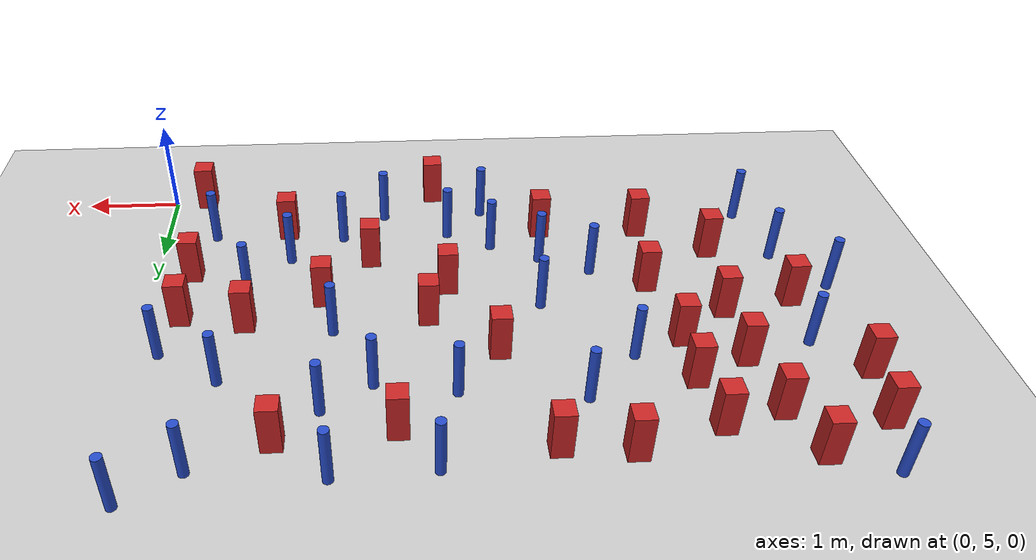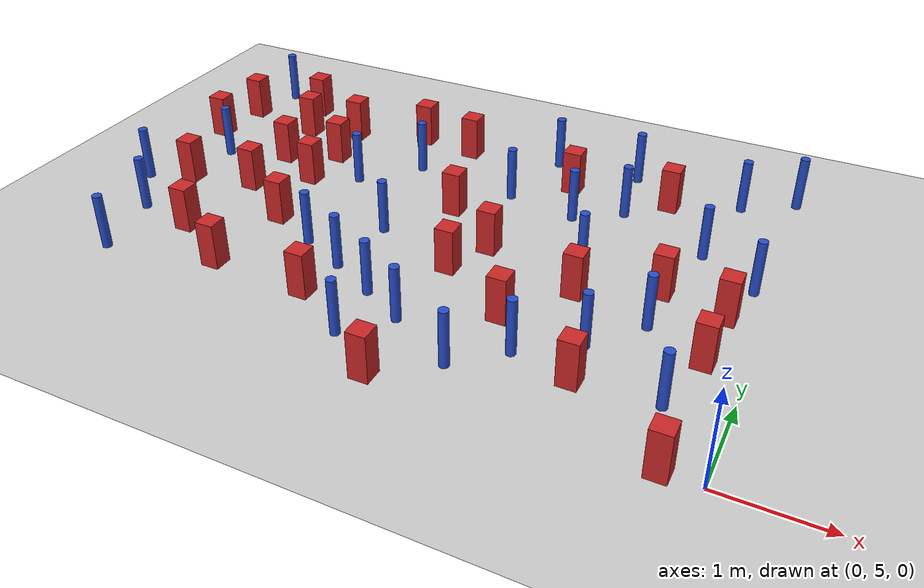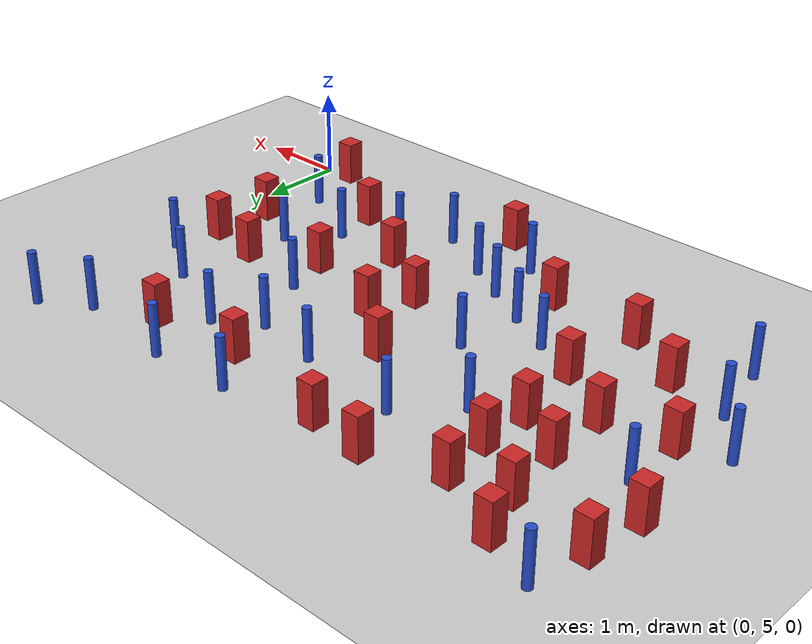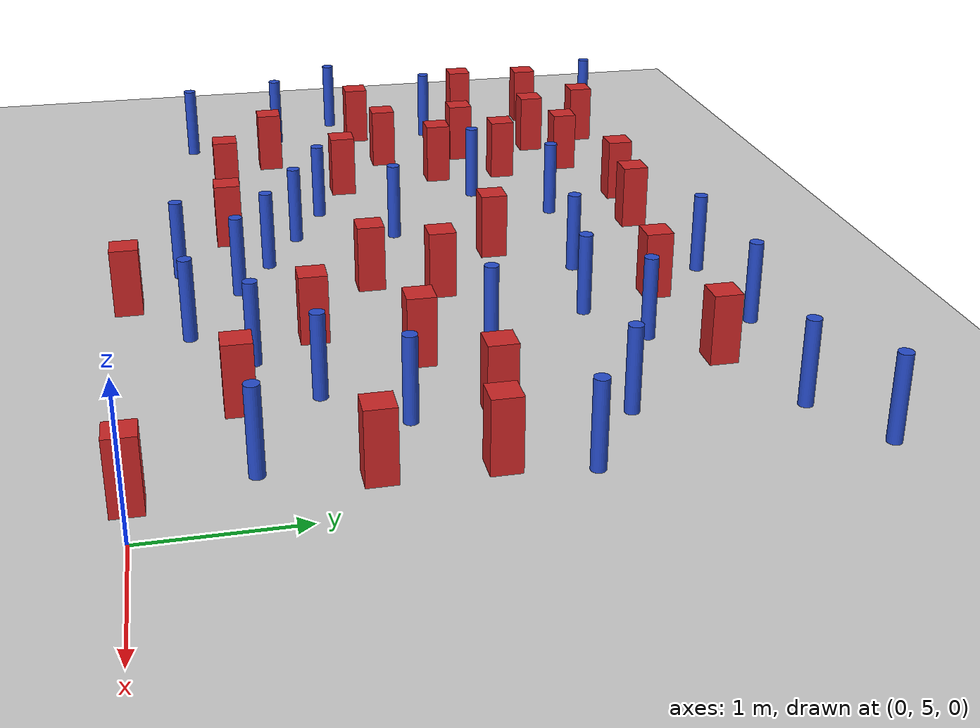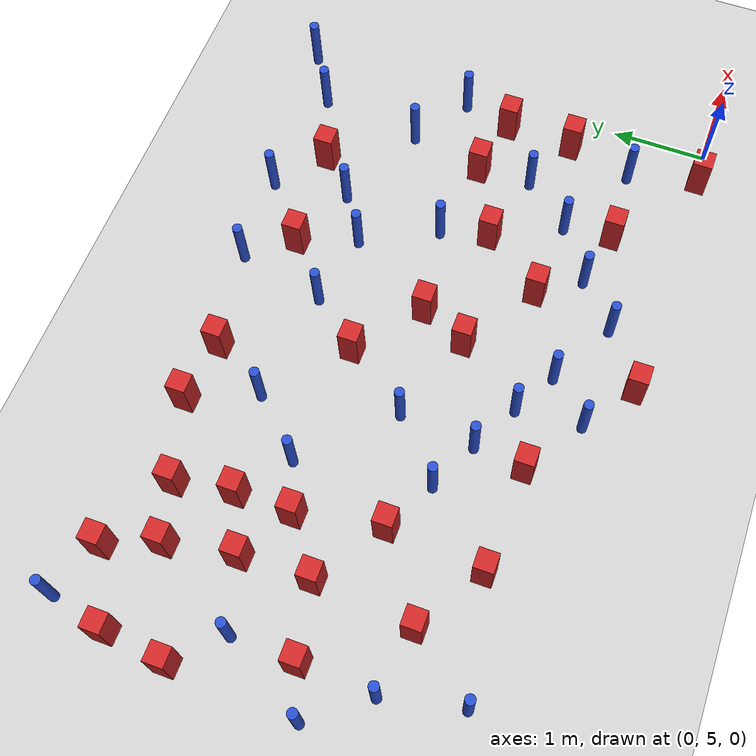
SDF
<sdf version="1.6">
 <world name="default">
  <model name="ground_plane">
   <static>1</static>
   <link name="link">
    <collision name="collision">
     <geometry><plane><normal>0 0 1</normal><size>100 100</size></plane></geometry>
     <surface><friction><ode><mu>100</mu><mu2>50</mu2></ode></friction></surface>
    </collision>
    <visual name="visual">
     <cast_shadows>0</cast_shadows>
     <geometry><plane><normal>0 0 1</normal><size>100 100</size></plane></geometry>
     <material>
      <ambient>1.0 1.0 1.0 1.0</ambient>
      <diffuse>0.8 0.8 0.8 1.0</diffuse>
      <specular>0.01 0.01 0.01 1.000000</specular>
     </material>
    </visual>
   </link>
  </model>
  <model name="pole_obstacle13">
   <static>true</static>
   <pose>-3.09752706126 5.78183192374 2.88873142074e-08 -9.90536689859e-09 4.60219948989e-07 -1.20965994961e-07</pose>
   <link name="link">
    <pose>0 0 0.3 0 -0 0</pose>
    <inertial>
     <mass>1</mass>
     <inertia><ixx>0.145833</ixx><ixy>0</ixy><ixz>0</ixz><iyy>0.145833</iyy><iyz>0</iyz><izz>0.125</izz></inertia>
    </inertial>
    <collision name="collision">
     <geometry><cylinder><radius>0.05</radius><length>.6</length></cylinder></geometry>
    </collision>
    <visual name="visual">
     <geometry><cylinder><radius>0.05</radius><length>.6</length></cylinder></geometry>
     <material>
      <script><name>Gazebo/Blue</name><uri>file://media/materials/scripts/gazebo.material</uri></script>
     </material>
    </visual>
   </link>
  </model>
  <model name="square_post_obstacle10">
   <static>true</static>
   <pose>-5.09372376777 6.79573837946 8.22691968438e-08 7.2212513382e-06 -7.54495500217e-07 2.29674213826e-05</pose>
   <link name="link">
    <pose>0 0 0.25 0 -0 0</pose>
    <inertial>
     <mass>100</mass>
     <inertia>
      <ixx>0.166667</ixx>
      <ixy>0</ixy>
      <ixz>0</ixz>
      <iyy>0.166667</iyy>
      <iyz>0</iyz>
      <izz>0.166667</izz>
     </inertia>
    </inertial>
    <collision name="collision"><geometry><box><size>.2 .2 .5</size></box></geometry></collision>
    <visual name="visual">
     <geometry><box><size>.2 .2 .5</size></box></geometry>
     <material>
      <script><name>Gazebo/Red</name><uri>file://media/materials/scripts/gazebo.material</uri></script>
     </material>
    </visual>
   </link>
  </model>
  <model name="square_post_obstacle12">
   <static>true</static>
   <pose>-0.361523648074 7.12259870741 8.22691968438e-08 7.22125133819e-06 -7.54495500217e-07 2.29674213826e-05</pose>
   <link name="link">
    <pose>0 0 0.25 0 -0 0</pose>
    <inertial>
     <mass>100</mass>
     <inertia>
      <ixx>0.166667</ixx>
      <ixy>0</ixy>
      <ixz>0</ixz>
      <iyy>0.166667</iyy>
      <iyz>0</iyz>
      <izz>0.166667</izz>
     </inertia>
    </inertial>
    <collision name="collision"><geometry><box><size>.2 .2 .5</size></box></geometry></collision>
    <visual name="visual">
     <geometry><box><size>.2 .2 .5</size></box></geometry>
     <material>
      <script><name>Gazebo/Red</name><uri>file://media/materials/scripts/gazebo.material</uri></script>
     </material>
    </visual>
   </link>
  </model>
  <model name="pole_obstacle25">
   <static>true</static>
   <pose>-1.39941806681 6.18166165972 2.88873142074e-08 -9.90536689852e-09 4.60219948989e-07 -1.2096599496e-07</pose>
   <link name="link">
    <pose>0 0 0.3 0 -0 0</pose>
    <inertial>
     <mass>1</mass>
     <inertia><ixx>0.145833</ixx><ixy>0</ixy><ixz>0</ixz><iyy>0.145833</iyy><iyz>0</iyz><izz>0.125</izz></inertia>
    </inertial>
    <collision name="collision">
     <geometry><cylinder><radius>0.05</radius><length>.6</length></cylinder></geometry>
    </collision>
    <visual name="visual">
     <geometry><cylinder><radius>0.05</radius><length>.6</length></cylinder></geometry>
     <material>
      <script><name>Gazebo/Blue</name><uri>file://media/materials/scripts/gazebo.material</uri></script>
     </material>
    </visual>
   </link>
  </model>
  <model name="pole_obstacle32">
   <static>true</static>
   <pose>-0.978145460235 6.68846403294 2.88873142074e-08 -9.90536689644e-09 4.60219948994e-07 -1.20965994957e-07</pose>
   <link name="link">
    <pose>0 0 0.3 0 -0 0</pose>
    <inertial>
     <mass>1</mass>
     <inertia><ixx>0.145833</ixx><ixy>0</ixy><ixz>0</ixz><iyy>0.145833</iyy><iyz>0</iyz><izz>0.125</izz></inertia>
    </inertial>
    <collision name="collision">
     <geometry><cylinder><radius>0.05</radius><length>.6</length></cylinder></geometry>
    </collision>
    <visual name="visual">
     <geometry><cylinder><radius>0.05</radius><length>.6</length></cylinder></geometry>
     <material>
      <script><name>Gazebo/Blue</name><uri>file://media/materials/scripts/gazebo.material</uri></script>
     </material>
    </visual>
   </link>
  </model>
  <model name="square_post_obstacle28">
   <static>true</static>
   <pose>-5.88088668942 6.23241408819 8.22691968438e-08 7.2212513382e-06 -7.54495500217e-07 2.29674213826e-05</pose>
   <link name="link">
    <pose>0 0 0.25 0 -0 0</pose>
    <inertial>
     <mass>100</mass>
     <inertia>
      <ixx>0.166667</ixx>
      <ixy>0</ixy>
      <ixz>0</ixz>
      <iyy>0.166667</iyy>
      <iyz>0</iyz>
      <izz>0.166667</izz>
     </inertia>
    </inertial>
    <collision name="collision"><geometry><box><size>.2 .2 .5</size></box></geometry></collision>
    <visual name="visual">
     <geometry><box><size>.2 .2 .5</size></box></geometry>
     <material>
      <script><name>Gazebo/Red</name><uri>file://media/materials/scripts/gazebo.material</uri></script>
     </material>
    </visual>
   </link>
  </model>
  <model name="pole_obstacle34">
   <static>true</static>
   <pose>-6.38263424655 5.55719528867 2.88873142074e-08 -9.90536690842e-09 4.60219948965e-07 -1.20965994976e-07</pose>
   <link name="link">
    <pose>0 0 0.3 0 -0 0</pose>
    <inertial>
     <mass>1</mass>
     <inertia><ixx>0.145833</ixx><ixy>0</ixy><ixz>0</ixz><iyy>0.145833</iyy><iyz>0</iyz><izz>0.125</izz></inertia>
    </inertial>
    <collision name="collision">
     <geometry><cylinder><radius>0.05</radius><length>.6</length></cylinder></geometry>
    </collision>
    <visual name="visual">
     <geometry><cylinder><radius>0.05</radius><length>.6</length></cylinder></geometry>
     <material>
      <script><name>Gazebo/Blue</name><uri>file://media/materials/scripts/gazebo.material</uri></script>
     </material>
    </visual>
   </link>
  </model>
  <model name="pole_obstacle35">
   <static>true</static>
   <pose>-3.04799570644 8.30142210731 2.88873142074e-08 -9.9053668994e-09 4.60219948987e-07 -1.20965994963e-07</pose>
   <link name="link">
    <pose>0 0 0.3 0 -0 0</pose>
    <inertial>
     <mass>1</mass>
     <inertia><ixx>0.145833</ixx><ixy>0</ixy><ixz>0</ixz><iyy>0.145833</iyy><iyz>0</iyz><izz>0.125</izz></inertia>
    </inertial>
    <collision name="collision">
     <geometry><cylinder><radius>0.05</radius><length>.6</length></cylinder></geometry>
    </collision>
    <visual name="visual">
     <geometry><cylinder><radius>0.05</radius><length>.6</length></cylinder></geometry>
     <material>
      <script><name>Gazebo/Blue</name><uri>file://media/materials/scripts/gazebo.material</uri></script>
     </material>
    </visual>
   </link>
  </model>
  <model name="pole_obstacle44">
   <static>true</static>
   <pose>-4.76435596727 7.87955859203 2.88873142074e-08 -9.90536690842e-09 4.60219948965e-07 -1.20965994976e-07</pose>
   <link name="link">
    <pose>0 0 0.3 0 -0 0</pose>
    <inertial>
     <mass>1</mass>
     <inertia><ixx>0.145833</ixx><ixy>0</ixy><ixz>0</ixz><iyy>0.145833</iyy><iyz>0</iyz><izz>0.125</izz></inertia>
    </inertial>
    <collision name="collision">
     <geometry><cylinder><radius>0.05</radius><length>.6</length></cylinder></geometry>
    </collision>
    <visual name="visual">
     <geometry><cylinder><radius>0.05</radius><length>.6</length></cylinder></geometry>
     <material>
      <script><name>Gazebo/Blue</name><uri>file://media/materials/scripts/gazebo.material</uri></script>
     </material>
    </visual>
   </link>
  </model>
  <model name="square_post_obstacle35">
   <static>true</static>
   <pose>-5.78124887673 7.25372089332 8.22691968438e-08 7.2212513382e-06 -7.54495500217e-07 2.29674213826e-05</pose>
   <link name="link">
    <pose>0 0 0.25 0 -0 0</pose>
    <inertial>
     <mass>100</mass>
     <inertia>
      <ixx>0.166667</ixx>
      <ixy>0</ixy>
      <ixz>0</ixz>
      <iyy>0.166667</iyy>
      <iyz>0</iyz>
      <izz>0.166667</izz>
     </inertia>
    </inertial>
    <collision name="collision"><geometry><box><size>.2 .2 .5</size></box></geometry></collision>
    <visual name="visual">
     <geometry><box><size>.2 .2 .5</size></box></geometry>
     <material>
      <script><name>Gazebo/Red</name><uri>file://media/materials/scripts/gazebo.material</uri></script>
     </material>
    </visual>
   </link>
  </model>
  <model name="square_post_obstacle36">
   <static>true</static>
   <pose>-3.8725887 9.0288964442 8.22691968438e-08 7.22125133819e-06 -7.54495500217e-07 2.29674213826e-05</pose>
   <link name="link">
    <pose>0 0 0.25 0 -0 0</pose>
    <inertial>
     <mass>100</mass>
     <inertia>
      <ixx>0.166667</ixx>
      <ixy>0</ixy>
      <ixz>0</ixz>
      <iyy>0.166667</iyy>
      <iyz>0</iyz>
      <izz>0.166667</izz>
     </inertia>
    </inertial>
    <collision name="collision"><geometry><box><size>.2 .2 .5</size></box></geometry></collision>
    <visual name="visual">
     <geometry><box><size>.2 .2 .5</size></box></geometry>
     <material>
      <script><name>Gazebo/Red</name><uri>file://media/materials/scripts/gazebo.material</uri></script>
     </material>
    </visual>
   </link>
  </model>
  <model name="square_post_obstacle39">
   <static>true</static>
   <pose>-6.90768108743 8.19594916055 8.22691968438e-08 7.22125133819e-06 -7.54495500217e-07 2.29674213826e-05</pose>
   <link name="link">
    <pose>0 0 0.25 0 -0 0</pose>
    <inertial>
     <mass>100</mass>
     <inertia>
      <ixx>0.166667</ixx>
      <ixy>0</ixy>
      <ixz>0</ixz>
      <iyy>0.166667</iyy>
      <iyz>0</iyz>
      <izz>0.166667</izz>
     </inertia>
    </inertial>
    <collision name="collision"><geometry><box><size>.2 .2 .5</size></box></geometry></collision>
    <visual name="visual">
     <geometry><box><size>.2 .2 .5</size></box></geometry>
     <material>
      <script><name>Gazebo/Red</name><uri>file://media/materials/scripts/gazebo.material</uri></script>
     </material>
    </visual>
   </link>
  </model>
  <model name="pole_obstacle54">
   <static>true</static>
   <pose>-0.549693112478 5.72079669298 2.88873142074e-08 -9.90536689526e-09 4.60219948997e-07 -1.20965994955e-07</pose>
   <link name="link">
    <pose>0 0 0.3 0 -0 0</pose>
    <inertial>
     <mass>1</mass>
     <inertia><ixx>0.145833</ixx><ixy>0</ixy><ixz>0</ixz><iyy>0.145833</iyy><iyz>0</iyz><izz>0.125</izz></inertia>
    </inertial>
    <collision name="collision">
     <geometry><cylinder><radius>0.05</radius><length>.6</length></cylinder></geometry>
    </collision>
    <visual name="visual">
     <geometry><cylinder><radius>0.05</radius><length>.6</length></cylinder></geometry>
     <material>
      <script><name>Gazebo/Blue</name><uri>file://media/materials/scripts/gazebo.material</uri></script>
     </material>
    </visual>
   </link>
  </model>
  <model name="square_post_obstacle43">
   <static>true</static>
   <pose>-4.52124168001 9.10415499762 8.22691968438e-08 7.22125133819e-06 -7.54495500217e-07 2.29674213826e-05</pose>
   <link name="link">
    <pose>0 0 0.25 0 -0 0</pose>
    <inertial>
     <mass>100</mass>
     <inertia>
      <ixx>0.166667</ixx>
      <ixy>0</ixy>
      <ixz>0</ixz>
      <iyy>0.166667</iyy>
      <iyz>0</iyz>
      <izz>0.166667</izz>
     </inertia>
    </inertial>
    <collision name="collision"><geometry><box><size>.2 .2 .5</size></box></geometry></collision>
    <visual name="visual">
     <geometry><box><size>.2 .2 .5</size></box></geometry>
     <material>
      <script><name>Gazebo/Red</name><uri>file://media/materials/scripts/gazebo.material</uri></script>
     </material>
    </visual>
   </link>
  </model>
  <model name="square_post_obstacle44">
   <static>true</static>
   <pose>-2.82374033689 7.23022554029 8.22691968438e-08 7.2212513382e-06 -7.54495500217e-07 2.29674213826e-05</pose>
   <link name="link">
    <pose>0 0 0.25 0 -0 0</pose>
    <inertial>
     <mass>100</mass>
     <inertia>
      <ixx>0.166667</ixx>
      <ixy>0</ixy>
      <ixz>0</ixz>
      <iyy>0.166667</iyy>
      <iyz>0</iyz>
      <izz>0.166667</izz>
     </inertia>
    </inertial>
    <collision name="collision"><geometry><box><size>.2 .2 .5</size></box></geometry></collision>
    <visual name="visual">
     <geometry><box><size>.2 .2 .5</size></box></geometry>
     <material>
      <script><name>Gazebo/Red</name><uri>file://media/materials/scripts/gazebo.material</uri></script>
     </material>
    </visual>
   </link>
  </model>
  <model name="pole_obstacle67">
   <static>true</static>
   <pose>-1.79344769 8.48152388576 2.88873142074e-08 -9.90536690474e-09 4.60219948974e-07 -1.2096599497e-07</pose>
   <link name="link">
    <pose>0 0 0.3 0 -0 0</pose>
    <inertial>
     <mass>1</mass>
     <inertia><ixx>0.145833</ixx><ixy>0</ixy><ixz>0</ixz><iyy>0.145833</iyy><iyz>0</iyz><izz>0.125</izz></inertia>
    </inertial>
    <collision name="collision">
     <geometry><cylinder><radius>0.05</radius><length>.6</length></cylinder></geometry>
    </collision>
    <visual name="visual">
     <geometry><cylinder><radius>0.05</radius><length>.6</length></cylinder></geometry>
     <material>
      <script><name>Gazebo/Blue</name><uri>file://media/materials/scripts/gazebo.material</uri></script>
     </material>
    </visual>
   </link>
  </model>
  <model name="square_post_obstacle51">
   <static>true</static>
   <pose>-5.25417287853 8.2433065508 8.22691968438e-08 7.22125133819e-06 -7.54495500217e-07 2.29674213826e-05</pose>
   <link name="link">
    <pose>0 0 0.25 0 -0 0</pose>
    <inertial>
     <mass>100</mass>
     <inertia>
      <ixx>0.166667</ixx>
      <ixy>0</ixy>
      <ixz>0</ixz>
      <iyy>0.166667</iyy>
      <iyz>0</iyz>
      <izz>0.166667</izz>
     </inertia>
    </inertial>
    <collision name="collision"><geometry><box><size>.2 .2 .5</size></box></geometry></collision>
    <visual name="visual">
     <geometry><box><size>.2 .2 .5</size></box></geometry>
     <material>
      <script><name>Gazebo/Red</name><uri>file://media/materials/scripts/gazebo.material</uri></script>
     </material>
    </visual>
   </link>
  </model>
  <model name="pole_obstacle70">
   <static>true</static>
   <pose>-6.49441318463 7.76860619862 2.88873142074e-08 -9.90536690842e-09 4.60219948965e-07 -1.20965994976e-07</pose>
   <link name="link">
    <pose>0 0 0.3 0 -0 0</pose>
    <inertial>
     <mass>1</mass>
     <inertia><ixx>0.145833</ixx><ixy>0</ixy><ixz>0</ixz><iyy>0.145833</iyy><iyz>0</iyz><izz>0.125</izz></inertia>
    </inertial>
    <collision name="collision">
     <geometry><cylinder><radius>0.05</radius><length>.6</length></cylinder></geometry>
    </collision>
    <visual name="visual">
     <geometry><cylinder><radius>0.05</radius><length>.6</length></cylinder></geometry>
     <material>
      <script><name>Gazebo/Blue</name><uri>file://media/materials/scripts/gazebo.material</uri></script>
     </material>
    </visual>
   </link>
  </model>
  <model name="pole_obstacle71">
   <static>true</static>
   <pose>-3.96966585372 7.072029253 2.88873142074e-08 -9.90536689401e-09 4.60219948999e-07 -1.20965994955e-07</pose>
   <link name="link">
    <pose>0 0 0.3 0 -0 0</pose>
    <inertial>
     <mass>1</mass>
     <inertia><ixx>0.145833</ixx><ixy>0</ixy><ixz>0</ixz><iyy>0.145833</iyy><iyz>0</iyz><izz>0.125</izz></inertia>
    </inertial>
    <collision name="collision">
     <geometry><cylinder><radius>0.05</radius><length>.6</length></cylinder></geometry>
    </collision>
    <visual name="visual">
     <geometry><cylinder><radius>0.05</radius><length>.6</length></cylinder></geometry>
     <material>
      <script><name>Gazebo/Blue</name><uri>file://media/materials/scripts/gazebo.material</uri></script>
     </material>
    </visual>
   </link>
  </model>
  <model name="pole_obstacle72">
   <static>true</static>
   <pose>-2.27395002027 8.16362570571 2.88873142074e-08 -9.90536692318e-09 4.6021994893e-07 -1.20965994988e-07</pose>
   <link name="link">
    <pose>0 0 0.3 0 -0 0</pose>
    <inertial>
     <mass>1</mass>
     <inertia><ixx>0.145833</ixx><ixy>0</ixy><ixz>0</ixz><iyy>0.145833</iyy><iyz>0</iyz><izz>0.125</izz></inertia>
    </inertial>
    <collision name="collision">
     <geometry><cylinder><radius>0.05</radius><length>.6</length></cylinder></geometry>
    </collision>
    <visual name="visual">
     <geometry><cylinder><radius>0.05</radius><length>.6</length></cylinder></geometry>
     <material>
      <script><name>Gazebo/Blue</name><uri>file://media/materials/scripts/gazebo.material</uri></script>
     </material>
    </visual>
   </link>
  </model>
  <model name="pole_obstacle91">
   <static>true</static>
   <pose>-1.87969214909 7.3956992861 2.88873142074e-08 -9.90536689852e-09 4.60219948989e-07 -1.2096599496e-07</pose>
   <link name="link">
    <pose>0 0 0.3 0 -0 0</pose>
    <inertial>
     <mass>1</mass>
     <inertia><ixx>0.145833</ixx><ixy>0</ixy><ixz>0</ixz><iyy>0.145833</iyy><iyz>0</iyz><izz>0.125</izz></inertia>
    </inertial>
    <collision name="collision">
     <geometry><cylinder><radius>0.05</radius><length>.6</length></cylinder></geometry>
    </collision>
    <visual name="visual">
     <geometry><cylinder><radius>0.05</radius><length>.6</length></cylinder></geometry>
     <material>
      <script><name>Gazebo/Blue</name><uri>file://media/materials/scripts/gazebo.material</uri></script>
     </material>
    </visual>
   </link>
  </model>
  <model name="square_post_obstacle86">
   <static>true</static>
   <pose>-6.82895561713 8.83637297897 8.22691968438e-08 7.22125133819e-06 -7.54495500217e-07 2.29674213826e-05</pose>
   <link name="link">
    <pose>0 0 0.25 0 -0 0</pose>
    <inertial>
     <mass>100</mass>
     <inertia>
      <ixx>0.166667</ixx>
      <ixy>0</ixy>
      <ixz>0</ixz>
      <iyy>0.166667</iyy>
      <iyz>0</iyz>
      <izz>0.166667</izz>
     </inertia>
    </inertial>
    <collision name="collision"><geometry><box><size>.2 .2 .5</size></box></geometry></collision>
    <visual name="visual">
     <geometry><box><size>.2 .2 .5</size></box></geometry>
     <material>
      <script><name>Gazebo/Red</name><uri>file://media/materials/scripts/gazebo.material</uri></script>
     </material>
    </visual>
   </link>
  </model>
  <model name="pole_obstacle98">
   <static>true</static>
   <pose>-0.155122532531 9.47459133012 2.88873142074e-08 -9.90536690775e-09 4.60219948967e-07 -1.20965994977e-07</pose>
   <link name="link">
    <pose>0 0 0.3 0 -0 0</pose>
    <inertial>
     <mass>1</mass>
     <inertia><ixx>0.145833</ixx><ixy>0</ixy><ixz>0</ixz><iyy>0.145833</iyy><iyz>0</iyz><izz>0.125</izz></inertia>
    </inertial>
    <collision name="collision">
     <geometry><cylinder><radius>0.05</radius><length>.6</length></cylinder></geometry>
    </collision>
    <visual name="visual">
     <geometry><cylinder><radius>0.05</radius><length>.6</length></cylinder></geometry>
     <material>
      <script><name>Gazebo/Blue</name><uri>file://media/materials/scripts/gazebo.material</uri></script>
     </material>
    </visual>
   </link>
  </model>
  <model name="pole_obstacle100">
   <static>true</static>
   <pose>-2.83504426528 9.22296318618 2.88873142074e-08 -9.90536692318e-09 4.6021994893e-07 -1.20965994988e-07</pose>
   <link name="link">
    <pose>0 0 0.3 0 -0 0</pose>
    <inertial>
     <mass>1</mass>
     <inertia><ixx>0.145833</ixx><ixy>0</ixy><ixz>0</ixz><iyy>0.145833</iyy><iyz>0</iyz><izz>0.125</izz></inertia>
    </inertial>
    <collision name="collision">
     <geometry><cylinder><radius>0.05</radius><length>.6</length></cylinder></geometry>
    </collision>
    <visual name="visual">
     <geometry><cylinder><radius>0.05</radius><length>.6</length></cylinder></geometry>
     <material>
      <script><name>Gazebo/Blue</name><uri>file://media/materials/scripts/gazebo.material</uri></script>
     </material>
    </visual>
   </link>
  </model>
  <model name="square_post_obstacle94">
   <static>true</static>
   <pose>-2.96891068486 4.98764113949 8.22691968438e-08 7.2212513382e-06 -7.54495500217e-07 2.29674213826e-05</pose>
   <link name="link">
    <pose>0 0 0.25 0 -0 0</pose>
    <inertial>
     <mass>100</mass>
     <inertia>
      <ixx>0.166667</ixx>
      <ixy>0</ixy>
      <ixz>0</ixz>
      <iyy>0.166667</iyy>
      <iyz>0</iyz>
      <izz>0.166667</izz>
     </inertia>
    </inertial>
    <collision name="collision"><geometry><box><size>.2 .2 .5</size></box></geometry></collision>
    <visual name="visual">
     <geometry><box><size>.2 .2 .5</size></box></geometry>
     <material>
      <script><name>Gazebo/Red</name><uri>file://media/materials/scripts/gazebo.material</uri></script>
     </material>
    </visual>
   </link>
  </model>
  <model name="square_post_obstacle96">
   <static>true</static>
   <pose>-1.00983236348 7.25172491799 8.22691968438e-08 7.2212513382e-06 -7.54495500217e-07 2.29674213826e-05</pose>
   <link name="link">
    <pose>0 0 0.25 0 -0 0</pose>
    <inertial>
     <mass>100</mass>
     <inertia>
      <ixx>0.166667</ixx>
      <ixy>0</ixy>
      <ixz>0</ixz>
      <iyy>0.166667</iyy>
      <iyz>0</iyz>
      <izz>0.166667</izz>
     </inertia>
    </inertial>
    <collision name="collision"><geometry><box><size>.2 .2 .5</size></box></geometry></collision>
    <visual name="visual">
     <geometry><box><size>.2 .2 .5</size></box></geometry>
     <material>
      <script><name>Gazebo/Red</name><uri>file://media/materials/scripts/gazebo.material</uri></script>
     </material>
    </visual>
   </link>
  </model>
  <model name="pole_obstacle103">
   <static>true</static>
   <pose>-2.4050203494 5.40175848421 2.88873142074e-08 -9.90536689859e-09 4.60219948989e-07 -1.20965994961e-07</pose>
   <link name="link">
    <pose>0 0 0.3 0 -0 0</pose>
    <inertial>
     <mass>1</mass>
     <inertia><ixx>0.145833</ixx><ixy>0</ixy><ixz>0</ixz><iyy>0.145833</iyy><iyz>0</iyz><izz>0.125</izz></inertia>
    </inertial>
    <collision name="collision">
     <geometry><cylinder><radius>0.05</radius><length>.6</length></cylinder></geometry>
    </collision>
    <visual name="visual">
     <geometry><cylinder><radius>0.05</radius><length>.6</length></cylinder></geometry>
     <material>
      <script><name>Gazebo/Blue</name><uri>file://media/materials/scripts/gazebo.material</uri></script>
     </material>
    </visual>
   </link>
  </model>
  <model name="pole_obstacle111">
   <static>true</static>
   <pose>-4.0514354884 6.2896635294 2.88873142074e-08 -9.90536690842e-09 4.60219948965e-07 -1.20965994976e-07</pose>
   <link name="link">
    <pose>0 0 0.3 0 -0 0</pose>
    <inertial>
     <mass>1</mass>
     <inertia><ixx>0.145833</ixx><ixy>0</ixy><ixz>0</ixz><iyy>0.145833</iyy><iyz>0</iyz><izz>0.125</izz></inertia>
    </inertial>
    <collision name="collision">
     <geometry><cylinder><radius>0.05</radius><length>.6</length></cylinder></geometry>
    </collision>
    <visual name="visual">
     <geometry><cylinder><radius>0.05</radius><length>.6</length></cylinder></geometry>
     <material>
      <script><name>Gazebo/Blue</name><uri>file://media/materials/scripts/gazebo.material</uri></script>
     </material>
    </visual>
   </link>
  </model>
  <model name="pole_obstacle116">
   <static>true</static>
   <pose>-1.89456845196 9.275374111 2.88873142074e-08 -9.90536690474e-09 4.60219948974e-07 -1.2096599497e-07</pose>
   <link name="link">
    <pose>0 0 0.3 0 -0 0</pose>
    <inertial>
     <mass>1</mass>
     <inertia><ixx>0.145833</ixx><ixy>0</ixy><ixz>0</ixz><iyy>0.145833</iyy><iyz>0</iyz><izz>0.125</izz></inertia>
    </inertial>
    <collision name="collision">
     <geometry><cylinder><radius>0.05</radius><length>.6</length></cylinder></geometry>
    </collision>
    <visual name="visual">
     <geometry><cylinder><radius>0.05</radius><length>.6</length></cylinder></geometry>
     <material>
      <script><name>Gazebo/Blue</name><uri>file://media/materials/scripts/gazebo.material</uri></script>
     </material>
    </visual>
   </link>
  </model>
  <model name="square_post_obstacle120">
   <static>true</static>
   <pose>-1.7693388882 6.88631957767 8.22691968438e-08 7.2212513382e-06 -7.54495500217e-07 2.29674213826e-05</pose>
   <link name="link">
    <pose>0 0 0.25 0 -0 0</pose>
    <inertial>
     <mass>100</mass>
     <inertia>
      <ixx>0.166667</ixx>
      <ixy>0</ixy>
      <ixz>0</ixz>
      <iyy>0.166667</iyy>
      <iyz>0</iyz>
      <izz>0.166667</izz>
     </inertia>
    </inertial>
    <collision name="collision"><geometry><box><size>.2 .2 .5</size></box></geometry></collision>
    <visual name="visual">
     <geometry><box><size>.2 .2 .5</size></box></geometry>
     <material>
      <script><name>Gazebo/Red</name><uri>file://media/materials/scripts/gazebo.material</uri></script>
     </material>
    </visual>
   </link>
  </model>
  <model name="pole_obstacle127">
   <static>true</static>
   <pose>-4.23427408273 8.43493416487 2.88873142074e-08 -9.9053668967e-09 4.60219948993e-07 -1.20965994957e-07</pose>
   <link name="link">
    <pose>0 0 0.3 0 -0 0</pose>
    <inertial>
     <mass>1</mass>
     <inertia><ixx>0.145833</ixx><ixy>0</ixy><ixz>0</ixz><iyy>0.145833</iyy><iyz>0</iyz><izz>0.125</izz></inertia>
    </inertial>
    <collision name="collision">
     <geometry><cylinder><radius>0.05</radius><length>.6</length></cylinder></geometry>
    </collision>
    <visual name="visual">
     <geometry><cylinder><radius>0.05</radius><length>.6</length></cylinder></geometry>
     <material>
      <script><name>Gazebo/Blue</name><uri>file://media/materials/scripts/gazebo.material</uri></script>
     </material>
    </visual>
   </link>
  </model>
  <model name="square_post_obstacle133">
   <static>true</static>
   <pose>-2.25356123935 6.23418155714 8.22691968438e-08 7.2212513382e-06 -7.54495500217e-07 2.29674213826e-05</pose>
   <link name="link">
    <pose>0 0 0.25 0 -0 0</pose>
    <inertial>
     <mass>100</mass>
     <inertia>
      <ixx>0.166667</ixx>
      <ixy>0</ixy>
      <ixz>0</ixz>
      <iyy>0.166667</iyy>
      <iyz>0</iyz>
      <izz>0.166667</izz>
     </inertia>
    </inertial>
    <collision name="collision"><geometry><box><size>.2 .2 .5</size></box></geometry></collision>
    <visual name="visual">
     <geometry><box><size>.2 .2 .5</size></box></geometry>
     <material>
      <script><name>Gazebo/Red</name><uri>file://media/materials/scripts/gazebo.material</uri></script>
     </material>
    </visual>
   </link>
  </model>
  <model name="pole_obstacle140">
   <static>true</static>
   <pose>-3.4971080562 5.36492281703 2.88873142074e-08 -9.90536689859e-09 4.60219948989e-07 -1.20965994961e-07</pose>
   <link name="link">
    <pose>0 0 0.3 0 -0 0</pose>
    <inertial>
     <mass>1</mass>
     <inertia><ixx>0.145833</ixx><ixy>0</ixy><ixz>0</ixz><iyy>0.145833</iyy><iyz>0</iyz><izz>0.125</izz></inertia>
    </inertial>
    <collision name="collision">
     <geometry><cylinder><radius>0.05</radius><length>.6</length></cylinder></geometry>
    </collision>
    <visual name="visual">
     <geometry><cylinder><radius>0.05</radius><length>.6</length></cylinder></geometry>
     <material>
      <script><name>Gazebo/Blue</name><uri>file://media/materials/scripts/gazebo.material</uri></script>
     </material>
    </visual>
   </link>
  </model>
  <model name="square_post_obstacle136">
   <static>true</static>
   <pose>-0.386308759072 6.40504097747 8.22691968438e-08 7.22125133819e-06 -7.54495500217e-07 2.29674213826e-05</pose>
   <link name="link">
    <pose>0 0 0.25 0 -0 0</pose>
    <inertial>
     <mass>100</mass>
     <inertia>
      <ixx>0.166667</ixx>
      <ixy>0</ixy>
      <ixz>0</ixz>
      <iyy>0.166667</iyy>
      <iyz>0</iyz>
      <izz>0.166667</izz>
     </inertia>
    </inertial>
    <collision name="collision"><geometry><box><size>.2 .2 .5</size></box></geometry></collision>
    <visual name="visual">
     <geometry><box><size>.2 .2 .5</size></box></geometry>
     <material>
      <script><name>Gazebo/Red</name><uri>file://media/materials/scripts/gazebo.material</uri></script>
     </material>
    </visual>
   </link>
  </model>
  <model name="pole_obstacle143">
   <static>true</static>
   <pose>-1.94982968506 5.80589663858 2.88873142074e-08 -9.90536689852e-09 4.60219948989e-07 -1.2096599496e-07</pose>
   <link name="link">
    <pose>0 0 0.3 0 -0 0</pose>
    <inertial>
     <mass>1</mass>
     <inertia><ixx>0.145833</ixx><ixy>0</ixy><ixz>0</ixz><iyy>0.145833</iyy><iyz>0</iyz><izz>0.125</izz></inertia>
    </inertial>
    <collision name="collision">
     <geometry><cylinder><radius>0.05</radius><length>.6</length></cylinder></geometry>
    </collision>
    <visual name="visual">
     <geometry><cylinder><radius>0.05</radius><length>.6</length></cylinder></geometry>
     <material>
      <script><name>Gazebo/Blue</name><uri>file://media/materials/scripts/gazebo.material</uri></script>
     </material>
    </visual>
   </link>
  </model>
  <model name="square_post_obstacle143">
   <static>true</static>
   <pose>-3.4809892285 7.76131840037 8.22691968438e-08 7.2212513382e-06 -7.54495500217e-07 2.29674213826e-05</pose>
   <link name="link">
    <pose>0 0 0.25 0 -0 0</pose>
    <inertial>
     <mass>100</mass>
     <inertia>
      <ixx>0.166667</ixx>
      <ixy>0</ixy>
      <ixz>0</ixz>
      <iyy>0.166667</iyy>
      <iyz>0</iyz>
      <izz>0.166667</izz>
     </inertia>
    </inertial>
    <collision name="collision"><geometry><box><size>.2 .2 .5</size></box></geometry></collision>
    <visual name="visual">
     <geometry><box><size>.2 .2 .5</size></box></geometry>
     <material>
      <script><name>Gazebo/Red</name><uri>file://media/materials/scripts/gazebo.material</uri></script>
     </material>
    </visual>
   </link>
  </model>
  <model name="square_post_obstacle155">
   <static>true</static>
   <pose>-5.19004219719 5.80536907565 8.22691968438e-08 7.2212513382e-06 -7.54495500217e-07 2.29674213826e-05</pose>
   <link name="link">
    <pose>0 0 0.25 0 -0 0</pose>
    <inertial>
     <mass>100</mass>
     <inertia>
      <ixx>0.166667</ixx>
      <ixy>0</ixy>
      <ixz>0</ixz>
      <iyy>0.166667</iyy>
      <iyz>0</iyz>
      <izz>0.166667</izz>
     </inertia>
    </inertial>
    <collision name="collision"><geometry><box><size>.2 .2 .5</size></box></geometry></collision>
    <visual name="visual">
     <geometry><box><size>.2 .2 .5</size></box></geometry>
     <material>
      <script><name>Gazebo/Red</name><uri>file://media/materials/scripts/gazebo.material</uri></script>
     </material>
    </visual>
   </link>
  </model>
  <model name="square_post_obstacle159">
   <static>true</static>
   <pose>-6.12516809433 9.21575628388 8.22691968438e-08 7.22125133819e-06 -7.54495500217e-07 2.29674213826e-05</pose>
   <link name="link">
    <pose>0 0 0.25 0 -0 0</pose>
    <inertial>
     <mass>100</mass>
     <inertia>
      <ixx>0.166667</ixx>
      <ixy>0</ixy>
      <ixz>0</ixz>
      <iyy>0.166667</iyy>
      <iyz>0</iyz>
      <izz>0.166667</izz>
     </inertia>
    </inertial>
    <collision name="collision"><geometry><box><size>.2 .2 .5</size></box></geometry></collision>
    <visual name="visual">
     <geometry><box><size>.2 .2 .5</size></box></geometry>
     <material>
      <script><name>Gazebo/Red</name><uri>file://media/materials/scripts/gazebo.material</uri></script>
     </material>
    </visual>
   </link>
  </model>
  <model name="square_post_obstacle168">
   <static>true</static>
   <pose>-1.40156248425 8.84954226743 8.22691968438e-08 7.22125133819e-06 -7.54495500217e-07 2.29674213826e-05</pose>
   <link name="link">
    <pose>0 0 0.25 0 -0 0</pose>
    <inertial>
     <mass>100</mass>
     <inertia>
      <ixx>0.166667</ixx>
      <ixy>0</ixy>
      <ixz>0</ixz>
      <iyy>0.166667</iyy>
      <iyz>0</iyz>
      <izz>0.166667</izz>
     </inertia>
    </inertial>
    <collision name="collision"><geometry><box><size>.2 .2 .5</size></box></geometry></collision>
    <visual name="visual">
     <geometry><box><size>.2 .2 .5</size></box></geometry>
     <material>
      <script><name>Gazebo/Red</name><uri>file://media/materials/scripts/gazebo.material</uri></script>
     </material>
    </visual>
   </link>
  </model>
  <model name="square_post_obstacle176">
   <static>true</static>
   <pose>-5.8006684097 7.97436469733 8.22691968438e-08 7.22125133819e-06 -7.54495500217e-07 2.29674213826e-05</pose>
   <link name="link">
    <pose>0 0 0.25 0 -0 0</pose>
    <inertial>
     <mass>100</mass>
     <inertia>
      <ixx>0.166667</ixx>
      <ixy>0</ixy>
      <ixz>0</ixz>
      <iyy>0.166667</iyy>
      <iyz>0</iyz>
      <izz>0.166667</izz>
     </inertia>
    </inertial>
    <collision name="collision"><geometry><box><size>.2 .2 .5</size></box></geometry></collision>
    <visual name="visual">
     <geometry><box><size>.2 .2 .5</size></box></geometry>
     <material>
      <script><name>Gazebo/Red</name><uri>file://media/materials/scripts/gazebo.material</uri></script>
     </material>
    </visual>
   </link>
  </model>
  <model name="square_post_obstacle181">
   <static>true</static>
   <pose>-1.34658010023 5.67560947973 8.22691968438e-08 7.2212513382e-06 -7.54495500217e-07 2.29674213826e-05</pose>
   <link name="link">
    <pose>0 0 0.25 0 -0 0</pose>
    <inertial>
     <mass>100</mass>
     <inertia>
      <ixx>0.166667</ixx>
      <ixy>0</ixy>
      <ixz>0</ixz>
      <iyy>0.166667</iyy>
      <iyz>0</iyz>
      <izz>0.166667</izz>
     </inertia>
    </inertial>
    <collision name="collision"><geometry><box><size>.2 .2 .5</size></box></geometry></collision>
    <visual name="visual">
     <geometry><box><size>.2 .2 .5</size></box></geometry>
     <material>
      <script><name>Gazebo/Red</name><uri>file://media/materials/scripts/gazebo.material</uri></script>
     </material>
    </visual>
   </link>
  </model>
  <model name="square_post_obstacle182">
   <static>true</static>
   <pose>-4.11737028065 5.76405863755 8.22691968438e-08 7.2212513382e-06 -7.54495500217e-07 2.29674213826e-05</pose>
   <link name="link">
    <pose>0 0 0.25 0 -0 0</pose>
    <inertial>
     <mass>100</mass>
     <inertia>
      <ixx>0.166667</ixx>
      <ixy>0</ixy>
      <ixz>0</ixz>
      <iyy>0.166667</iyy>
      <iyz>0</iyz>
      <izz>0.166667</izz>
     </inertia>
    </inertial>
    <collision name="collision"><geometry><box><size>.2 .2 .5</size></box></geometry></collision>
    <visual name="visual">
     <geometry><box><size>.2 .2 .5</size></box></geometry>
     <material>
      <script><name>Gazebo/Red</name><uri>file://media/materials/scripts/gazebo.material</uri></script>
     </material>
    </visual>
   </link>
  </model>
  <model name="square_post_obstacle183">
   <static>true</static>
   <pose>-3.04304161888 6.74029555646 8.22691968438e-08 7.2212513382e-06 -7.54495500217e-07 2.29674213826e-05</pose>
   <link name="link">
    <pose>0 0 0.25 0 -0 0</pose>
    <inertial>
     <mass>100</mass>
     <inertia>
      <ixx>0.166667</ixx>
      <ixy>0</ixy>
      <ixz>0</ixz>
      <iyy>0.166667</iyy>
      <iyz>0</iyz>
      <izz>0.166667</izz>
     </inertia>
    </inertial>
    <collision name="collision"><geometry><box><size>.2 .2 .5</size></box></geometry></collision>
    <visual name="visual">
     <geometry><box><size>.2 .2 .5</size></box></geometry>
     <material>
      <script><name>Gazebo/Red</name><uri>file://media/materials/scripts/gazebo.material</uri></script>
     </material>
    </visual>
   </link>
  </model>
  <model name="pole_obstacle187">
   <static>true</static>
   <pose>-6.55193095592 6.34966695801 2.88873142074e-08 -9.90536690842e-09 4.60219948965e-07 -1.20965994976e-07</pose>
   <link name="link">
    <pose>0 0 0.3 0 -0 0</pose>
    <inertial>
     <mass>1</mass>
     <inertia><ixx>0.145833</ixx><ixy>0</ixy><ixz>0</ixz><iyy>0.145833</iyy><iyz>0</iyz><izz>0.125</izz></inertia>
    </inertial>
    <collision name="collision">
     <geometry><cylinder><radius>0.05</radius><length>.6</length></cylinder></geometry>
    </collision>
    <visual name="visual">
     <geometry><cylinder><radius>0.05</radius><length>.6</length></cylinder></geometry>
     <material>
      <script><name>Gazebo/Blue</name><uri>file://media/materials/scripts/gazebo.material</uri></script>
     </material>
    </visual>
   </link>
  </model>
  <model name="square_post_obstacle201">
   <static>true</static>
   <pose>-5.34854604578 8.84088736284 8.22691968438e-08 7.22125133819e-06 -7.54495500217e-07 2.29674213826e-05</pose>
   <link name="link">
    <pose>0 0 0.25 0 -0 0</pose>
    <inertial>
     <mass>100</mass>
     <inertia>
      <ixx>0.166667</ixx>
      <ixy>0</ixy>
      <ixz>0</ixz>
      <iyy>0.166667</iyy>
      <iyz>0</iyz>
      <izz>0.166667</izz>
     </inertia>
    </inertial>
    <collision name="collision"><geometry><box><size>.2 .2 .5</size></box></geometry></collision>
    <visual name="visual">
     <geometry><box><size>.2 .2 .5</size></box></geometry>
     <material>
      <script><name>Gazebo/Red</name><uri>file://media/materials/scripts/gazebo.material</uri></script>
     </material>
    </visual>
   </link>
  </model>
  <model name="pole_obstacle192">
   <static>true</static>
   <pose>-3.55370520523 6.03230452565 2.88873142074e-08 -9.90536689859e-09 4.60219948989e-07 -1.20965994961e-07</pose>
   <link name="link">
    <pose>0 0 0.3 0 -0 0</pose>
    <inertial>
     <mass>1</mass>
     <inertia><ixx>0.145833</ixx><ixy>0</ixy><ixz>0</ixz><iyy>0.145833</iyy><iyz>0</iyz><izz>0.125</izz></inertia>
    </inertial>
    <collision name="collision">
     <geometry><cylinder><radius>0.05</radius><length>.6</length></cylinder></geometry>
    </collision>
    <visual name="visual">
     <geometry><cylinder><radius>0.05</radius><length>.6</length></cylinder></geometry>
     <material>
      <script><name>Gazebo/Blue</name><uri>file://media/materials/scripts/gazebo.material</uri></script>
     </material>
    </visual>
   </link>
  </model>
  <model name="square_post_obstacle203">
   <static>true</static>
   <pose>-5.92234222286 8.67901352167 8.22691968438e-08 7.22125133819e-06 -7.54495500217e-07 2.29674213826e-05</pose>
   <link name="link">
    <pose>0 0 0.25 0 -0 0</pose>
    <inertial>
     <mass>100</mass>
     <inertia>
      <ixx>0.166667</ixx>
      <ixy>0</ixy>
      <ixz>0</ixz>
      <iyy>0.166667</iyy>
      <iyz>0</iyz>
      <izz>0.166667</izz>
     </inertia>
    </inertial>
    <collision name="collision"><geometry><box><size>.2 .2 .5</size></box></geometry></collision>
    <visual name="visual">
     <geometry><box><size>.2 .2 .5</size></box></geometry>
     <material>
      <script><name>Gazebo/Red</name><uri>file://media/materials/scripts/gazebo.material</uri></script>
     </material>
    </visual>
   </link>
  </model>
  <model name="pole_obstacle193">
   <static>true</static>
   <pose>-0.219438510214 7.65312511402 2.88873142074e-08 -9.90536689703e-09 4.60219948992e-07 -1.20965994959e-07</pose>
   <link name="link">
    <pose>0 0 0.3 0 -0 0</pose>
    <inertial>
     <mass>1</mass>
     <inertia><ixx>0.145833</ixx><ixy>0</ixy><ixz>0</ixz><iyy>0.145833</iyy><iyz>0</iyz><izz>0.125</izz></inertia>
    </inertial>
    <collision name="collision">
     <geometry><cylinder><radius>0.05</radius><length>.6</length></cylinder></geometry>
    </collision>
    <visual name="visual">
     <geometry><cylinder><radius>0.05</radius><length>.6</length></cylinder></geometry>
     <material>
      <script><name>Gazebo/Blue</name><uri>file://media/materials/scripts/gazebo.material</uri></script>
     </material>
    </visual>
   </link>
  </model>
  <model name="pole_obstacle199">
   <static>true</static>
   <pose>-6.69748385789 9.43495945556 2.88873142074e-08 -9.9053668967e-09 4.60219948993e-07 -1.20965994957e-07</pose>
   <link name="link">
    <pose>0 0 0.3 0 -0 0</pose>
    <inertial>
     <mass>1</mass>
     <inertia><ixx>0.145833</ixx><ixy>0</ixy><ixz>0</ixz><iyy>0.145833</iyy><iyz>0</iyz><izz>0.125</izz></inertia>
    </inertial>
    <collision name="collision">
     <geometry><cylinder><radius>0.05</radius><length>.6</length></cylinder></geometry>
    </collision>
    <visual name="visual">
     <geometry><cylinder><radius>0.05</radius><length>.6</length></cylinder></geometry>
     <material>
      <script><name>Gazebo/Blue</name><uri>file://media/materials/scripts/gazebo.material</uri></script>
     </material>
    </visual>
   </link>
  </model>
  <model name="pole_obstacle200">
   <static>true</static>
   <pose>-6.9810873879 6.90645594396 2.88873142074e-08 -9.90536690842e-09 4.60219948965e-07 -1.20965994976e-07</pose>
   <link name="link">
    <pose>0 0 0.3 0 -0 0</pose>
    <inertial>
     <mass>1</mass>
     <inertia><ixx>0.145833</ixx><ixy>0</ixy><ixz>0</ixz><iyy>0.145833</iyy><iyz>0</iyz><izz>0.125</izz></inertia>
    </inertial>
    <collision name="collision">
     <geometry><cylinder><radius>0.05</radius><length>.6</length></cylinder></geometry>
    </collision>
    <visual name="visual">
     <geometry><cylinder><radius>0.05</radius><length>.6</length></cylinder></geometry>
     <material>
      <script><name>Gazebo/Blue</name><uri>file://media/materials/scripts/gazebo.material</uri></script>
     </material>
    </visual>
   </link>
  </model>
  <model name="square_post_obstacle210">
   <static>true</static>
   <pose>-0.364386701858 4.9958423725 8.22691968438e-08 7.22125133819e-06 -7.54495500217e-07 2.29674213826e-05</pose>
   <link name="link">
    <pose>0 0 0.25 0 -0 0</pose>
    <inertial>
     <mass>100</mass>
     <inertia>
      <ixx>0.166667</ixx>
      <ixy>0</ixy>
      <ixz>0</ixz>
      <iyy>0.166667</iyy>
      <iyz>0</iyz>
      <izz>0.166667</izz>
     </inertia>
    </inertial>
    <collision name="collision"><geometry><box><size>.2 .2 .5</size></box></geometry></collision>
    <visual name="visual">
     <geometry><box><size>.2 .2 .5</size></box></geometry>
     <material>
      <script><name>Gazebo/Red</name><uri>file://media/materials/scripts/gazebo.material</uri></script>
     </material>
    </visual>
   </link>
  </model>
  <model name="square_post_obstacle213">
   <static>true</static>
   <pose>-6.51115241573 7.10422551724 8.22691968438e-08 7.2212513382e-06 -7.54495500217e-07 2.29674213826e-05</pose>
   <link name="link">
    <pose>0 0 0.25 0 -0 0</pose>
    <inertial>
     <mass>100</mass>
     <inertia>
      <ixx>0.166667</ixx>
      <ixy>0</ixy>
      <ixz>0</ixz>
      <iyy>0.166667</iyy>
      <iyz>0</iyz>
      <izz>0.166667</izz>
     </inertia>
    </inertial>
    <collision name="collision"><geometry><box><size>.2 .2 .5</size></box></geometry></collision>
    <visual name="visual">
     <geometry><box><size>.2 .2 .5</size></box></geometry>
     <material>
      <script><name>Gazebo/Red</name><uri>file://media/materials/scripts/gazebo.material</uri></script>
     </material>
    </visual>
   </link>
  </model>
  <model name="square_post_obstacle215">
   <static>true</static>
   <pose>-2.49101232928 8.75904425391 8.22691968438e-08 7.22125133819e-06 -7.54495500217e-07 2.29674213826e-05</pose>
   <link name="link">
    <pose>0 0 0.25 0 -0 0</pose>
    <inertial>
     <mass>100</mass>
     <inertia>
      <ixx>0.166667</ixx>
      <ixy>0</ixy>
      <ixz>0</ixz>
      <iyy>0.166667</iyy>
      <iyz>0</iyz>
      <izz>0.166667</izz>
     </inertia>
    </inertial>
    <collision name="collision"><geometry><box><size>.2 .2 .5</size></box></geometry></collision>
    <visual name="visual">
     <geometry><box><size>.2 .2 .5</size></box></geometry>
     <material>
      <script><name>Gazebo/Red</name><uri>file://media/materials/scripts/gazebo.material</uri></script>
     </material>
    </visual>
   </link>
  </model>
  <model name="square_post_obstacle216">
   <static>true</static>
   <pose>-5.26194753207 7.66304591591 8.22691968438e-08 7.22125133819e-06 -7.54495500217e-07 2.29674213826e-05</pose>
   <link name="link">
    <pose>0 0 0.25 0 -0 0</pose>
    <inertial>
     <mass>100</mass>
     <inertia>
      <ixx>0.166667</ixx>
      <ixy>0</ixy>
      <ixz>0</ixz>
      <iyy>0.166667</iyy>
      <iyz>0</iyz>
      <izz>0.166667</izz>
     </inertia>
    </inertial>
    <collision name="collision"><geometry><box><size>.2 .2 .5</size></box></geometry></collision>
    <visual name="visual">
     <geometry><box><size>.2 .2 .5</size></box></geometry>
     <material>
      <script><name>Gazebo/Red</name><uri>file://media/materials/scripts/gazebo.material</uri></script>
     </material>
    </visual>
   </link>
  </model>
  <model name="pole_obstacle209">
   <static>true</static>
   <pose>-0.685918990867 9.14597002041 2.88873142074e-08 -9.90536690779e-09 4.60219948967e-07 -1.20965994975e-07</pose>
   <link name="link">
    <pose>0 0 0.3 0 -0 0</pose>
    <inertial>
     <mass>1</mass>
     <inertia><ixx>0.145833</ixx><ixy>0</ixy><ixz>0</ixz><iyy>0.145833</iyy><iyz>0</iyz><izz>0.125</izz></inertia>
    </inertial>
    <collision name="collision">
     <geometry><cylinder><radius>0.05</radius><length>.6</length></cylinder></geometry>
    </collision>
    <visual name="visual">
     <geometry><cylinder><radius>0.05</radius><length>.6</length></cylinder></geometry>
     <material>
      <script><name>Gazebo/Blue</name><uri>file://media/materials/scripts/gazebo.material</uri></script>
     </material>
    </visual>
   </link>
  </model>
  <model name="pole_obstacle217">
   <static>true</static>
   <pose>-0.824081990867 8.05253002041 2.88873142074e-08 -9.90536690779e-09 4.60219948967e-07 -1.20965994975e-07</pose>
   <link name="link">
    <pose>0 0 0.3 0 -0 0</pose>
    <inertial>
     <mass>1</mass>
     <inertia><ixx>0.145833</ixx><ixy>0</ixy><ixz>0</ixz><iyy>0.145833</iyy><iyz>0</iyz><izz>0.125</izz></inertia>
    </inertial>
    <collision name="collision">
     <geometry><cylinder><radius>0.05</radius><length>.6</length></cylinder></geometry>
    </collision>
    <visual name="visual">
     <geometry><cylinder><radius>0.05</radius><length>.6</length></cylinder></geometry>
     <material>
      <script><name>Gazebo/Blue</name><uri>file://media/materials/scripts/gazebo.material</uri></script>
     </material>
    </visual>
   </link>
  </model>
  <model name="pole_obstacle220">
   <static>true</static>
   <pose>-4.56019999087 6.53216002041 2.88873142074e-08 -9.90536690842e-09 4.60219948965e-07 -1.20965994976e-07</pose>
   <link name="link">
    <pose>0 0 0.3 0 -0 0</pose>
    <inertial>
     <mass>1</mass>
     <inertia><ixx>0.145833</ixx><ixy>0</ixy><ixz>0</ixz><iyy>0.145833</iyy><iyz>0</iyz><izz>0.125</izz></inertia>
    </inertial>
    <collision name="collision">
     <geometry><cylinder><radius>0.05</radius><length>.6</length></cylinder></geometry>
    </collision>
    <visual name="visual">
     <geometry><cylinder><radius>0.05</radius><length>.6</length></cylinder></geometry>
     <material>
      <script><name>Gazebo/Blue</name><uri>file://media/materials/scripts/gazebo.material</uri></script>
     </material>
    </visual>
   </link>
  </model>
 </world>
</sdf>
